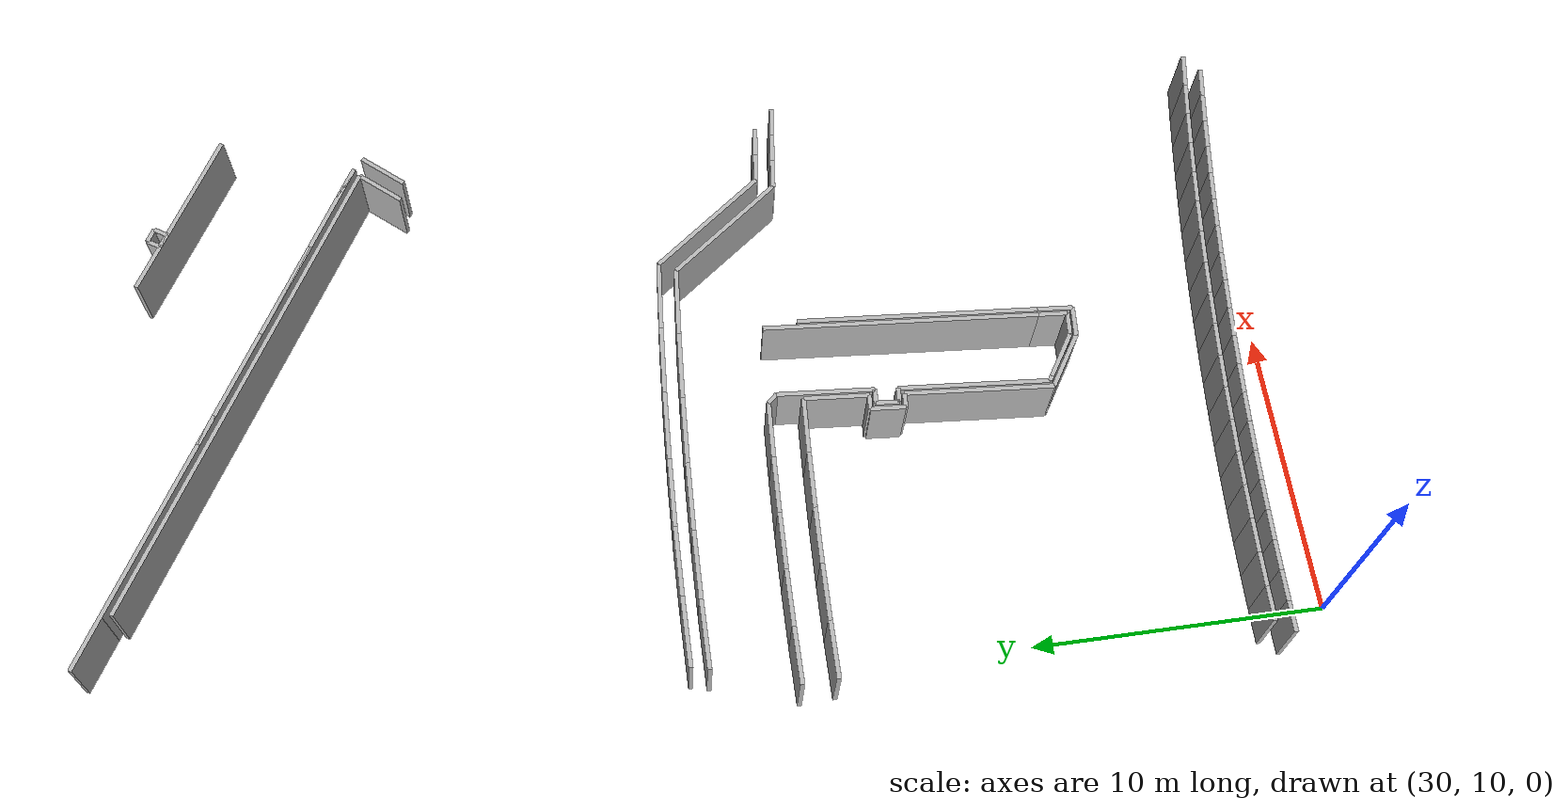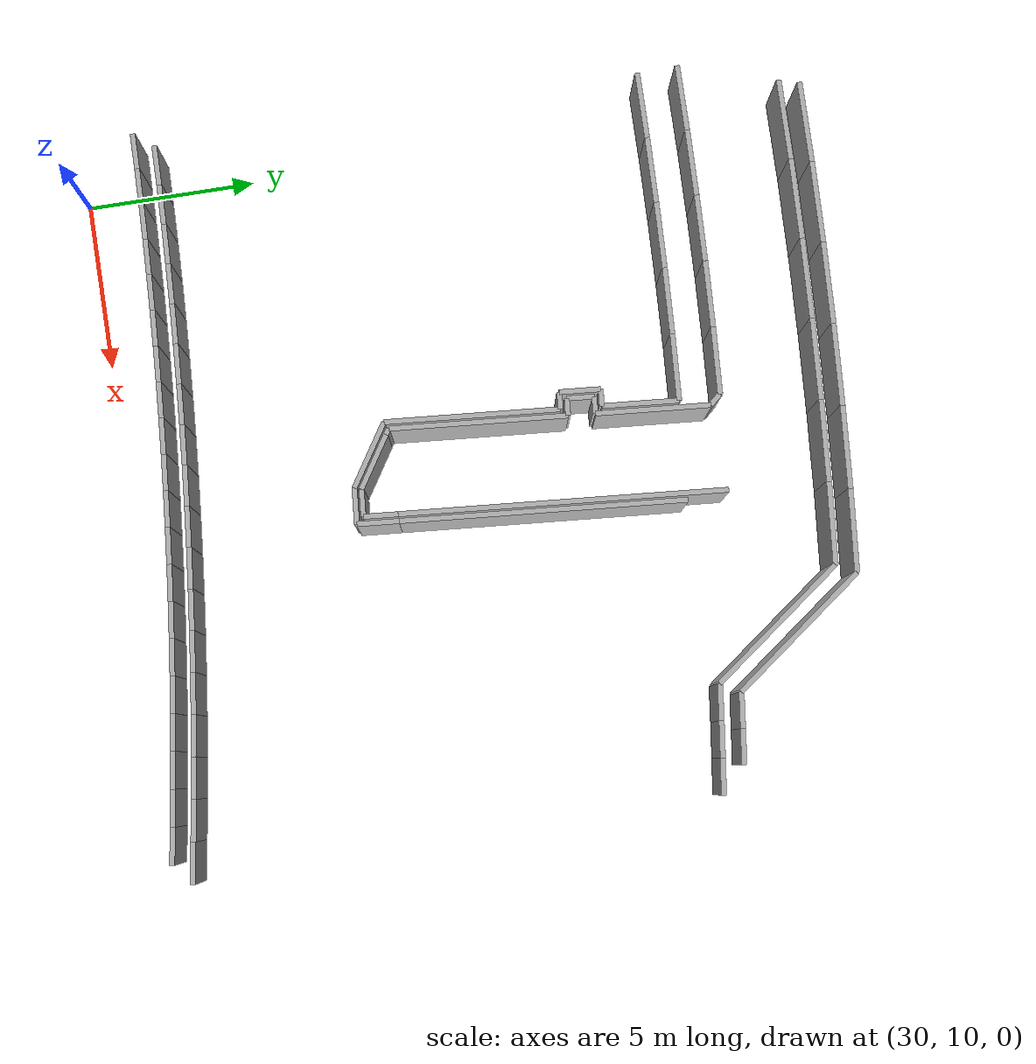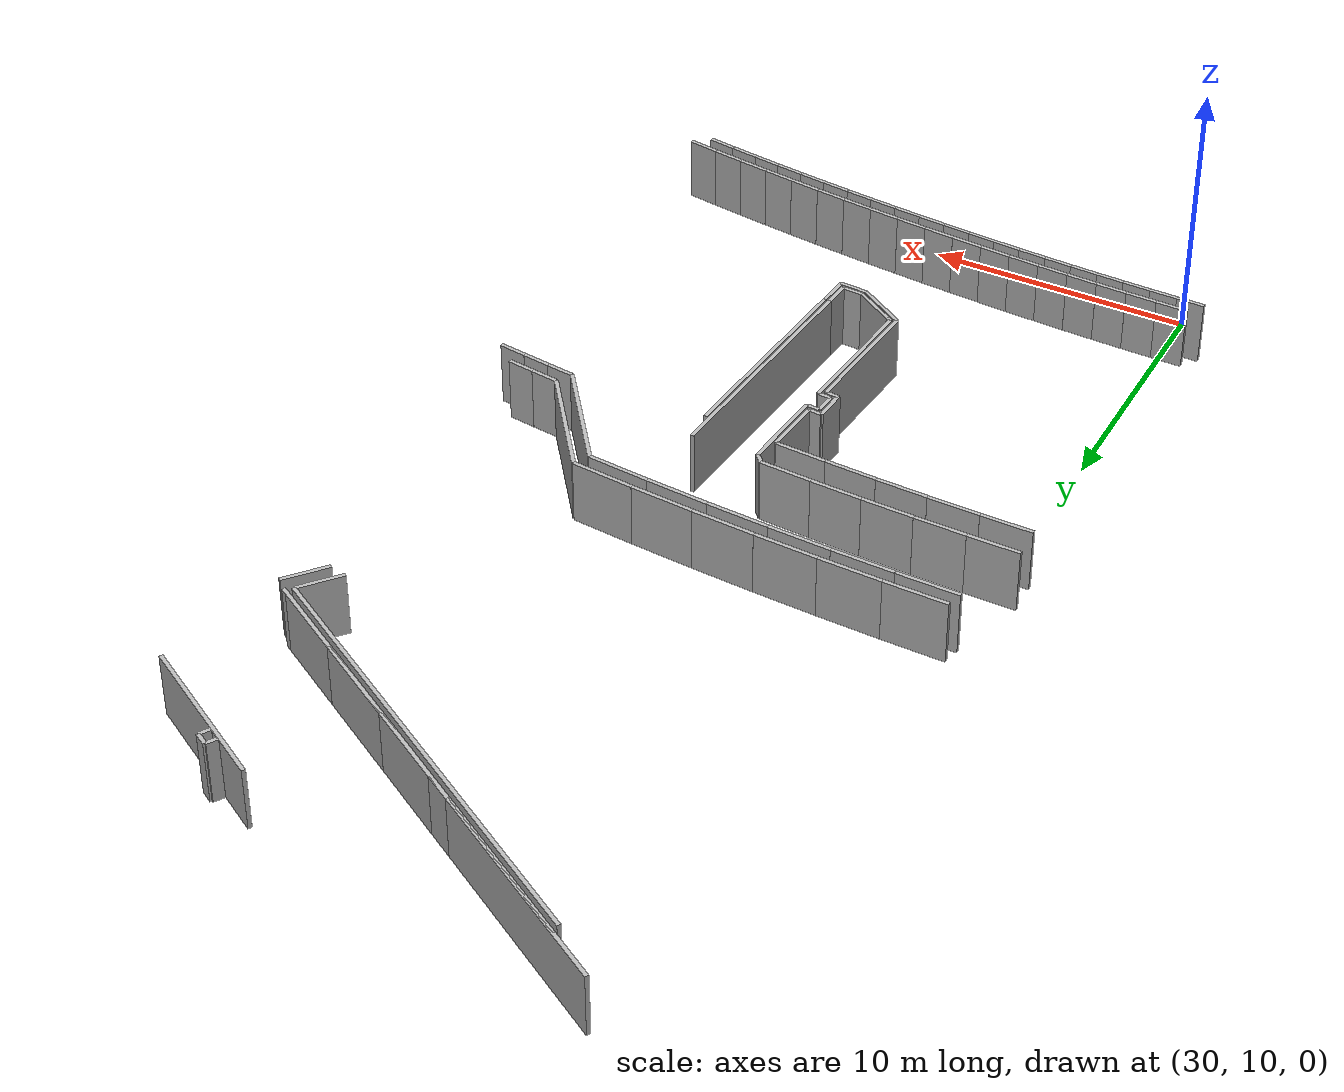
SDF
<sdf version="1.6">
 <model name="sps_0406">
  <static>1</static>
  <allow_auto_disable>0</allow_auto_disable>
  <link name="Wall71">
   <collision name="collision"><geometry><box><size>0.421971 0.15 2.5</size></box></geometry></collision>
   <visual name="visual">
    <geometry><box><size>0.421971 0.15 2.5</size></box></geometry>
    <transparency>0.0</transparency>
   </visual>
   <pose>39.1257 27.4712 1.25 0 0 -0.861464</pose>
  </link>
  <link name="Wall462">
   <collision name="collision"><geometry><box><size>2.24269 0.15 2.5</size></box></geometry></collision>
   <visual name="visual">
    <geometry><box><size>2.24269 0.15 2.5</size></box></geometry>
    <transparency>0.0</transparency>
   </visual>
   <pose>38.8982 25.3099 1.25 0 0 -1.6524</pose>
  </link>
  <link name="Wall463">
   <collision name="collision"><geometry><box><size>1.00034 0.15 2.5</size></box></geometry></collision>
   <visual name="visual">
    <geometry><box><size>1.00034 0.15 2.5</size></box></geometry>
    <transparency>0.0</transparency>
   </visual>
   <pose>40.9593 17.3946 1.25 0 -0 1.48912</pose>
  </link>
  <link name="Wall464">
   <collision name="collision"><geometry><box><size>9.54464 0.15 2.5</size></box></geometry></collision>
   <visual name="visual">
    <geometry><box><size>9.54464 0.15 2.5</size></box></geometry>
    <transparency>0.0</transparency>
   </visual>
   <pose>41.3895 22.6495 1.25 0 -0 1.48912</pose>
  </link>
  <link name="Wall469">
   <collision name="collision"><geometry><box><size>18.1378 0.15 2.5</size></box></geometry></collision>
   <visual name="visual">
    <geometry><box><size>18.1378 0.15 2.5</size></box></geometry>
    <transparency>0.0</transparency>
   </visual>
   <pose>42.2045 45.6037 1.25 0 0 -0.549248</pose>
  </link>
  <link name="Wall805">
   <collision name="collision"><geometry><box><size>1.20025 0.15 2.5</size></box></geometry></collision>
   <visual name="visual">
    <geometry><box><size>1.20025 0.15 2.5</size></box></geometry>
    <transparency>0.0</transparency>
   </visual>
   <pose>38.2593 23.6358 1.25 0 0 -1.65271</pose>
  </link>
  <link name="Wall806">
   <collision name="collision"><geometry><box><size>3.346 0.15 2.5</size></box></geometry></collision>
   <visual name="visual">
    <geometry><box><size>3.346 0.15 2.5</size></box></geometry>
    <transparency>0.0</transparency>
   </visual>
   <pose>39.1266 25.6437 1.25 0 0 -1.65248</pose>
  </link>
  <link name="Wall808">
   <collision name="collision"><geometry><box><size>17.8051 0.15 2.5</size></box></geometry></collision>
   <visual name="visual">
    <geometry><box><size>17.8051 0.15 2.5</size></box></geometry>
    <transparency>0.0</transparency>
   </visual>
   <pose>42.0626 45.3383 1.25 0 0 -0.549258</pose>
  </link>
  <link name="Wall1203">
   <collision name="collision"><geometry><box><size>2.09398 0.15 2.5</size></box></geometry></collision>
   <visual name="visual">
    <geometry><box><size>2.09398 0.15 2.5</size></box></geometry>
    <transparency>0.0</transparency>
   </visual>
   <pose>39.1731 17.3294 1.25 0 -0 2.57307</pose>
  </link>
  <link name="Wall1205">
   <collision name="collision"><geometry><box><size>1.04953 0.15 2.5</size></box></geometry></collision>
   <visual name="visual">
    <geometry><box><size>1.04953 0.15 2.5</size></box></geometry>
    <transparency>0.0</transparency>
   </visual>
   <pose>40.5785 16.7228 1.25 0 -0 3.05974</pose>
  </link>
  <link name="Wall1518">
   <collision name="collision"><geometry><box><size>1.80056 0.15 2.5</size></box></geometry></collision>
   <visual name="visual">
    <geometry><box><size>1.80056 0.15 2.5</size></box></geometry>
    <transparency>0.0</transparency>
   </visual>
   <pose>49.7382 39.8607 1.25 0 0 -2.27316</pose>
  </link>
  <link name="Wall1820">
   <collision name="collision"><geometry><box><size>5.1201 0.15 2.5</size></box></geometry></collision>
   <visual name="visual">
    <geometry><box><size>5.1201 0.15 2.5</size></box></geometry>
    <transparency>0.0</transparency>
   </visual>
   <pose>38.4997 20.4446 1.25 0 -0 1.48911</pose>
  </link>
  <link name="Wall1821">
   <collision name="collision"><geometry><box><size>0.500148 0.15 2.5</size></box></geometry></collision>
   <visual name="visual">
    <geometry><box><size>0.500148 0.15 2.5</size></box></geometry>
    <transparency>0.0</transparency>
   </visual>
   <pose>38.5576 24.2131 1.25 0 -0 3.05827</pose>
  </link>
  <link name="Wall1822">
   <collision name="collision"><geometry><box><size>0.500133 0.15 2.5</size></box></geometry></collision>
   <visual name="visual">
    <geometry><box><size>0.500133 0.15 2.5</size></box></geometry>
    <transparency>0.0</transparency>
   </visual>
   <pose>38.7409 23.997 1.25 0 -0 3.05863</pose>
  </link>
  <link name="Wall1823">
   <collision name="collision"><geometry><box><size>0.192513 0.15 2.5</size></box></geometry></collision>
   <visual name="visual">
    <geometry><box><size>0.192513 0.15 2.5</size></box></geometry>
    <transparency>0.0</transparency>
   </visual>
   <pose>38.5814 17.9449 1.25 0 0 -0.568467</pose>
  </link>
  <link name="Wall1824">
   <collision name="collision"><geometry><box><size>1.73126 0.15 2.5</size></box></geometry></collision>
   <visual name="visual">
    <geometry><box><size>1.73126 0.15 2.5</size></box></geometry>
    <transparency>0.0</transparency>
   </visual>
   <pose>39.392 17.4271 1.25 0 0 -0.568467</pose>
  </link>
  <link name="Wall1827">
   <collision name="collision"><geometry><box><size>4.78669 0.15 2.5</size></box></geometry></collision>
   <visual name="visual">
    <geometry><box><size>4.78669 0.15 2.5</size></box></geometry>
    <transparency>0.0</transparency>
   </visual>
   <pose>46.1321 28.7068 1.25 0 0 -0.935844</pose>
  </link>
  <link name="Wall2160">
   <collision name="collision"><geometry><box><size>0.500143 0.15 2.5</size></box></geometry></collision>
   <visual name="visual">
    <geometry><box><size>0.500143 0.15 2.5</size></box></geometry>
    <transparency>0.0</transparency>
   </visual>
   <pose>38.4594 23.0169 1.25 0 0 -0.083202</pose>
  </link>
  <link name="Wall2161">
   <collision name="collision"><geometry><box><size>0.500072 0.15 2.5</size></box></geometry></collision>
   <visual name="visual">
    <geometry><box><size>0.500072 0.15 2.5</size></box></geometry>
    <transparency>0.0</transparency>
   </visual>
   <pose>38.6757 23.2 1.25 0 0 -0.0829689</pose>
  </link>
  <link name="Wall2162">
   <collision name="collision"><geometry><box><size>0.799643 0.15 2.5</size></box></geometry></collision>
   <visual name="visual">
    <geometry><box><size>0.799643 0.15 2.5</size></box></geometry>
    <transparency>0.0</transparency>
   </visual>
   <pose>40.52 16.9286 1.25 0 0 -0.0813791</pose>
  </link>
  <link name="Wall2163">
   <collision name="collision"><geometry><box><size>8.32637 0.15 2.5</size></box></geometry></collision>
   <visual name="visual">
    <geometry><box><size>8.32637 0.15 2.5</size></box></geometry>
    <transparency>0.0</transparency>
   </visual>
   <pose>41.5406 22.0424 1.25 0 0 -1.65251</pose>
  </link>
  <link name="Wall2164">
   <collision name="collision"><geometry><box><size>1.21726 0.15 2.5</size></box></geometry></collision>
   <visual name="visual">
    <geometry><box><size>1.21726 0.15 2.5</size></box></geometry>
    <transparency>0.0</transparency>
   </visual>
   <pose>41.1511 17.2865 1.25 0 0 -1.65251</pose>
  </link>
  <link name="Wall2546">
   <collision name="collision"><geometry><box><size>0.799658 0.15 2.5</size></box></geometry></collision>
   <visual name="visual">
    <geometry><box><size>0.799658 0.15 2.5</size></box></geometry>
    <transparency>0.0</transparency>
   </visual>
   <pose>38.4591 23.6192 1.25 0 0 -1.6524</pose>
  </link>
  <link name="Wall2547">
   <collision name="collision"><geometry><box><size>5.19992 0.15 2.5</size></box></geometry></collision>
   <visual name="visual">
    <geometry><box><size>5.19992 0.15 2.5</size></box></geometry>
    <transparency>0.0</transparency>
   </visual>
   <pose>38.7125 20.588 1.25 0 0 -1.65253</pose>
  </link>
  <link name="Wall2550">
   <collision name="collision"><geometry><box><size>4.7795 0.15 2.5</size></box></geometry></collision>
   <visual name="visual">
    <geometry><box><size>4.7795 0.15 2.5</size></box></geometry>
    <transparency>0.0</transparency>
   </visual>
   <pose>45.8034 28.141 1.25 0 0 -0.935925</pose>
  </link>
  <link name="Wall2551">
   <collision name="collision"><geometry><box><size>1.78048 0.15 2.5</size></box></geometry></collision>
   <visual name="visual">
    <geometry><box><size>1.78048 0.15 2.5</size></box></geometry>
    <transparency>0.0</transparency>
   </visual>
   <pose>49.0803 40.0114 1.25 0 0 -2.27359</pose>
  </link>
  <link name="Wall3039">
   <collision name="collision"><geometry><box><size>3.09752 0.15 2.5</size></box></geometry></collision>
   <visual name="visual">
    <geometry><box><size>3.09752 0.15 2.5</size></box></geometry>
    <transparency>0.0</transparency>
   </visual>
   <pose>48.3874 41.8201 1.25 0 -0 2.59229</pose>
  </link>
  <link name="Wall3040">
   <collision name="collision"><geometry><box><size>3.67119 0.15 2.5</size></box></geometry></collision>
   <visual name="visual">
    <geometry><box><size>3.67119 0.15 2.5</size></box></geometry>
    <transparency>0.0</transparency>
   </visual>
   <pose>45.5008 43.587 1.25 0 -0 2.59231</pose>
  </link>
  <link name="Wall3041">
   <collision name="collision"><geometry><box><size>3.34159 0.15 2.5</size></box></geometry></collision>
   <visual name="visual">
    <geometry><box><size>3.34159 0.15 2.5</size></box></geometry>
    <transparency>0.0</transparency>
   </visual>
   <pose>42.5102 45.4176 1.25 0 -0 2.59231</pose>
  </link>
  <link name="Wall3042">
   <collision name="collision"><geometry><box><size>1.14589 0.15 2.5</size></box></geometry></collision>
   <visual name="visual">
    <geometry><box><size>1.14589 0.15 2.5</size></box></geometry>
    <transparency>0.0</transparency>
   </visual>
   <pose>40.5965 46.589 1.25 0 -0 2.59235</pose>
  </link>
  <link name="Wall3043">
   <collision name="collision"><geometry><box><size>8.5971 0.15 2.5</size></box></geometry></collision>
   <visual name="visual">
    <geometry><box><size>8.5971 0.15 2.5</size></box></geometry>
    <transparency>0.0</transparency>
   </visual>
   <pose>36.4416 49.1321 1.25 0 -0 2.59235</pose>
  </link>
  <link name="Wall6675">
   <collision name="collision"><geometry><box><size>1.98001 0.15 2.5</size></box></geometry></collision>
   <visual name="visual">
    <geometry><box><size>1.98001 0.15 2.5</size></box></geometry>
    <transparency>0.0</transparency>
   </visual>
   <pose>38.0004 27.6961 1.25 0 -0 3.0761</pose>
  </link>
  <link name="Wall6676">
   <collision name="collision"><geometry><box><size>1.98001 0.15 2.5</size></box></geometry></collision>
   <visual name="visual">
    <geometry><box><size>1.98001 0.15 2.5</size></box></geometry>
    <transparency>0.0</transparency>
   </visual>
   <pose>36.0239 27.8133 1.25 0 -0 3.08864</pose>
  </link>
  <link name="Wall6677">
   <collision name="collision"><geometry><box><size>1.97983 0.15 2.5</size></box></geometry></collision>
   <visual name="visual">
    <geometry><box><size>1.97983 0.15 2.5</size></box></geometry>
    <transparency>0.0</transparency>
   </visual>
   <pose>34.0461 27.9057 1.25 0 -0 3.10117</pose>
  </link>
  <link name="Wall6678">
   <collision name="collision"><geometry><box><size>1.97997 0.15 2.5</size></box></geometry></collision>
   <visual name="visual">
    <geometry><box><size>1.97997 0.15 2.5</size></box></geometry>
    <transparency>0.0</transparency>
   </visual>
   <pose>32.0674 27.9735 1.25 0 -0 3.11351</pose>
  </link>
  <link name="Wall6679">
   <collision name="collision"><geometry><box><size>1.98004 0.15 2.5</size></box></geometry></collision>
   <visual name="visual">
    <geometry><box><size>1.98004 0.15 2.5</size></box></geometry>
    <transparency>0.0</transparency>
   </visual>
   <pose>30.0879 28.0167 1.25 0 -0 3.12603</pose>
  </link>
  <link name="Wall6795">
   <collision name="collision"><geometry><box><size>6.22606 0.15 2.5</size></box></geometry></collision>
   <visual name="visual">
    <geometry><box><size>6.22606 0.15 2.5</size></box></geometry>
    <transparency>0.0</transparency>
   </visual>
   <pose>48.9723 47.1047 1.25 0 -0 2.59157</pose>
  </link>
  <link name="Wall6811">
   <collision name="collision"><geometry><box><size>1.19264 0.15 2.5</size></box></geometry></collision>
   <visual name="visual">
    <geometry><box><size>1.19264 0.15 2.5</size></box></geometry>
    <transparency>0.0</transparency>
   </visual>
   <pose>49.8899 10.7001 1.25 0 -0 2.98466</pose>
  </link>
  <link name="Wall6812">
   <collision name="collision"><geometry><box><size>1.1925 0.15 2.5</size></box></geometry></collision>
   <visual name="visual">
    <geometry><box><size>1.1925 0.15 2.5</size></box></geometry>
    <transparency>0.0</transparency>
   </visual>
   <pose>48.7112 10.8815 1.25 0 -0 2.99313</pose>
  </link>
  <link name="Wall6813">
   <collision name="collision"><geometry><box><size>1.19252 0.15 2.5</size></box></geometry></collision>
   <visual name="visual">
    <geometry><box><size>1.19252 0.15 2.5</size></box></geometry>
    <transparency>0.0</transparency>
   </visual>
   <pose>47.5311 11.0529 1.25 0 -0 3.00156</pose>
  </link>
  <link name="Wall6814">
   <collision name="collision"><geometry><box><size>1.19254 0.15 2.5</size></box></geometry></collision>
   <visual name="visual">
    <geometry><box><size>1.19254 0.15 2.5</size></box></geometry>
    <transparency>0.0</transparency>
   </visual>
   <pose>46.3495 11.2145 1.25 0 -0 3.00973</pose>
  </link>
  <link name="Wall6815">
   <collision name="collision"><geometry><box><size>1.19248 0.15 2.5</size></box></geometry></collision>
   <visual name="visual">
    <geometry><box><size>1.19248 0.15 2.5</size></box></geometry>
    <transparency>0.0</transparency>
   </visual>
   <pose>45.1667 11.3663 1.25 0 -0 3.01818</pose>
  </link>
  <link name="Wall6816">
   <collision name="collision"><geometry><box><size>1.19262 0.15 2.5</size></box></geometry></collision>
   <visual name="visual">
    <geometry><box><size>1.19262 0.15 2.5</size></box></geometry>
    <transparency>0.0</transparency>
   </visual>
   <pose>43.9827 11.5081 1.25 0 -0 3.02665</pose>
  </link>
  <link name="Wall6817">
   <collision name="collision"><geometry><box><size>1.19263 0.15 2.5</size></box></geometry></collision>
   <visual name="visual">
    <geometry><box><size>1.19263 0.15 2.5</size></box></geometry>
    <transparency>0.0</transparency>
   </visual>
   <pose>42.7974 11.64 1.25 0 -0 3.03489</pose>
  </link>
  <link name="Wall6818">
   <collision name="collision"><geometry><box><size>1.1927 0.15 2.5</size></box></geometry></collision>
   <visual name="visual">
    <geometry><box><size>1.1927 0.15 2.5</size></box></geometry>
    <transparency>0.0</transparency>
   </visual>
   <pose>41.611 11.762 1.25 0 -0 3.04333</pose>
  </link>
  <link name="Wall6819">
   <collision name="collision"><geometry><box><size>1.19261 0.15 2.5</size></box></geometry></collision>
   <visual name="visual">
    <geometry><box><size>1.19261 0.15 2.5</size></box></geometry>
    <transparency>0.0</transparency>
   </visual>
   <pose>40.4236 11.874 1.25 0 -0 3.05176</pose>
  </link>
  <link name="Wall6820">
   <collision name="collision"><geometry><box><size>1.19256 0.15 2.5</size></box></geometry></collision>
   <visual name="visual">
    <geometry><box><size>1.19256 0.15 2.5</size></box></geometry>
    <transparency>0.0</transparency>
   </visual>
   <pose>39.2354 11.9761 1.25 0 -0 3.06002</pose>
  </link>
  <link name="Wall6821">
   <collision name="collision"><geometry><box><size>1.1924 0.15 2.5</size></box></geometry></collision>
   <visual name="visual">
    <geometry><box><size>1.1924 0.15 2.5</size></box></geometry>
    <transparency>0.0</transparency>
   </visual>
   <pose>38.0465 12.0683 1.25 0 -0 3.06838</pose>
  </link>
  <link name="Wall6822">
   <collision name="collision"><geometry><box><size>1.19268 0.15 2.5</size></box></geometry></collision>
   <visual name="visual">
    <geometry><box><size>1.19268 0.15 2.5</size></box></geometry>
    <transparency>0.0</transparency>
   </visual>
   <pose>36.8568 12.1504 1.25 0 -0 3.07696</pose>
  </link>
  <link name="Wall6823">
   <collision name="collision"><geometry><box><size>1.19252 0.15 2.5</size></box></geometry></collision>
   <visual name="visual">
    <geometry><box><size>1.19252 0.15 2.5</size></box></geometry>
    <transparency>0.0</transparency>
   </visual>
   <pose>35.6664 12.2226 1.25 0 -0 3.08506</pose>
  </link>
  <link name="Wall6824">
   <collision name="collision"><geometry><box><size>1.1926 0.15 2.5</size></box></geometry></collision>
   <visual name="visual">
    <geometry><box><size>1.1926 0.15 2.5</size></box></geometry>
    <transparency>0.0</transparency>
   </visual>
   <pose>34.4755 12.2849 1.25 0 -0 3.09362</pose>
  </link>
  <link name="Wall6825">
   <collision name="collision"><geometry><box><size>1.19252 0.15 2.5</size></box></geometry></collision>
   <visual name="visual">
    <geometry><box><size>1.19252 0.15 2.5</size></box></geometry>
    <transparency>0.0</transparency>
   </visual>
   <pose>33.284 12.3371 1.25 0 -0 3.10202</pose>
  </link>
  <link name="Wall6826">
   <collision name="collision"><geometry><box><size>1.1926 0.15 2.5</size></box></geometry></collision>
   <visual name="visual">
    <geometry><box><size>1.1926 0.15 2.5</size></box></geometry>
    <transparency>0.0</transparency>
   </visual>
   <pose>32.0922 12.3794 1.25 0 -0 3.11022</pose>
  </link>
  <link name="Wall6827">
   <collision name="collision"><geometry><box><size>1.19269 0.15 2.5</size></box></geometry></collision>
   <visual name="visual">
    <geometry><box><size>1.19269 0.15 2.5</size></box></geometry>
    <transparency>0.0</transparency>
   </visual>
   <pose>30.9 12.4117 1.25 0 -0 3.11877</pose>
  </link>
  <link name="Wall6828">
   <collision name="collision"><geometry><box><size>1.19275 0.15 2.5</size></box></geometry></collision>
   <visual name="visual">
    <geometry><box><size>1.19275 0.15 2.5</size></box></geometry>
    <transparency>0.0</transparency>
   </visual>
   <pose>29.7075 12.434 1.25 0 -0 3.12701</pose>
  </link>
  <link name="Wall9344">
   <collision name="collision"><geometry><box><size>1.97128 0.15 2.5</size></box></geometry></collision>
   <visual name="visual">
    <geometry><box><size>1.97128 0.15 2.5</size></box></geometry>
    <transparency>0.0</transparency>
   </visual>
   <pose>38.0062 26.4926 1.25 0 -0 3.0755</pose>
  </link>
  <link name="Wall9345">
   <collision name="collision"><geometry><box><size>1.97145 0.15 2.5</size></box></geometry></collision>
   <visual name="visual">
    <geometry><box><size>1.97145 0.15 2.5</size></box></geometry>
    <transparency>0.0</transparency>
   </visual>
   <pose>36.0384 26.6104 1.25 0 -0 3.0881</pose>
  </link>
  <link name="Wall9346">
   <collision name="collision"><geometry><box><size>1.97143 0.15 2.5</size></box></geometry></collision>
   <visual name="visual">
    <geometry><box><size>1.97143 0.15 2.5</size></box></geometry>
    <transparency>0.0</transparency>
   </visual>
   <pose>34.0691 26.7034 1.25 0 -0 3.10071</pose>
  </link>
  <link name="Wall9347">
   <collision name="collision"><geometry><box><size>1.97163 0.15 2.5</size></box></geometry></collision>
   <visual name="visual">
    <geometry><box><size>1.97163 0.15 2.5</size></box></geometry>
    <transparency>0.0</transparency>
   </visual>
   <pose>32.0988 26.7718 1.25 0 -0 3.11308</pose>
  </link>
  <link name="Wall9348">
   <collision name="collision"><geometry><box><size>1.97144 0.15 2.5</size></box></geometry></collision>
   <visual name="visual">
    <geometry><box><size>1.97144 0.15 2.5</size></box></geometry>
    <transparency>0.0</transparency>
   </visual>
   <pose>30.1278 26.8155 1.25 0 -0 3.12577</pose>
  </link>
  <link name="Wall9371">
   <collision name="collision"><geometry><box><size>2.4022 0.15 2.5</size></box></geometry></collision>
   <visual name="visual">
    <geometry><box><size>2.4022 0.15 2.5</size></box></geometry>
    <transparency>0.0</transparency>
   </visual>
   <pose>43.1906 30.181 1.25 0 -0 3.04494</pose>
  </link>
  <link name="Wall9372">
   <collision name="collision"><geometry><box><size>2.40205 0.15 2.5</size></box></geometry></collision>
   <visual name="visual">
    <geometry><box><size>2.40205 0.15 2.5</size></box></geometry>
    <transparency>0.0</transparency>
   </visual>
   <pose>40.7981 30.3949 1.25 0 -0 3.05991</pose>
  </link>
  <link name="Wall9373">
   <collision name="collision"><geometry><box><size>2.40215 0.15 2.5</size></box></geometry></collision>
   <visual name="visual">
    <geometry><box><size>2.40215 0.15 2.5</size></box></geometry>
    <transparency>0.0</transparency>
   </visual>
   <pose>38.4026 30.5731 1.25 0 -0 3.07477</pose>
  </link>
  <link name="Wall9374">
   <collision name="collision"><geometry><box><size>2.40224 0.15 2.5</size></box></geometry></collision>
   <visual name="visual">
    <geometry><box><size>2.40224 0.15 2.5</size></box></geometry>
    <transparency>0.0</transparency>
   </visual>
   <pose>36.0048 30.7158 1.25 0 -0 3.08953</pose>
  </link>
  <link name="Wall9375">
   <collision name="collision"><geometry><box><size>2.40222 0.15 2.5</size></box></geometry></collision>
   <visual name="visual">
    <geometry><box><size>2.40222 0.15 2.5</size></box></geometry>
    <transparency>0.0</transparency>
   </visual>
   <pose>33.605 30.8228 1.25 0 -0 3.10454</pose>
  </link>
  <link name="Wall9376">
   <collision name="collision"><geometry><box><size>2.40221 0.15 2.5</size></box></geometry></collision>
   <visual name="visual">
    <geometry><box><size>2.40221 0.15 2.5</size></box></geometry>
    <transparency>0.0</transparency>
   </visual>
   <pose>31.2039 30.894 1.25 0 -0 3.11936</pose>
  </link>
  <link name="Wall9457">
   <collision name="collision"><geometry><box><size>1.03436 0.15 2.5</size></box></geometry></collision>
   <visual name="visual">
    <geometry><box><size>1.03436 0.15 2.5</size></box></geometry>
    <transparency>0.0</transparency>
   </visual>
   <pose>49.0899 26.5761 1.25 0 -0 3.0054</pose>
  </link>
  <link name="Wall9458">
   <collision name="collision"><geometry><box><size>1.03448 0.15 2.5</size></box></geometry></collision>
   <visual name="visual">
    <geometry><box><size>1.03448 0.15 2.5</size></box></geometry>
    <transparency>0.0</transparency>
   </visual>
   <pose>48.0646 26.7131 1.25 0 -0 3.01208</pose>
  </link>
  <link name="Wall9476">
   <collision name="collision"><geometry><box><size>1.06452 0.15 2.5</size></box></geometry></collision>
   <visual name="visual">
    <geometry><box><size>1.06452 0.15 2.5</size></box></geometry>
    <transparency>0.0</transparency>
   </visual>
   <pose>49.3294 10.1963 1.25 0 -0 2.98808</pose>
  </link>
  <link name="Wall9477">
   <collision name="collision"><geometry><box><size>1.06448 0.15 2.5</size></box></geometry></collision>
   <visual name="visual">
    <geometry><box><size>1.06448 0.15 2.5</size></box></geometry>
    <transparency>0.0</transparency>
   </visual>
   <pose>48.2768 10.3551 1.25 0 -0 2.99561</pose>
  </link>
  <link name="Wall9478">
   <collision name="collision"><geometry><box><size>1.06458 0.15 2.5</size></box></geometry></collision>
   <visual name="visual">
    <geometry><box><size>1.06458 0.15 2.5</size></box></geometry>
    <transparency>0.0</transparency>
   </visual>
   <pose>47.2231 10.506 1.25 0 -0 3.00309</pose>
  </link>
  <link name="Wall9479">
   <collision name="collision"><geometry><box><size>1.06456 0.15 2.5</size></box></geometry></collision>
   <visual name="visual">
    <geometry><box><size>1.06456 0.15 2.5</size></box></geometry>
    <transparency>0.0</transparency>
   </visual>
   <pose>46.1682 10.6491 1.25 0 -0 3.01044</pose>
  </link>
  <link name="Wall9480">
   <collision name="collision"><geometry><box><size>1.06449 0.15 2.5</size></box></geometry></collision>
   <visual name="visual">
    <geometry><box><size>1.06449 0.15 2.5</size></box></geometry>
    <transparency>0.0</transparency>
   </visual>
   <pose>45.1123 10.7842 1.25 0 -0 3.01823</pose>
  </link>
  <link name="Wall9481">
   <collision name="collision"><geometry><box><size>1.06435 0.15 2.5</size></box></geometry></collision>
   <visual name="visual">
    <geometry><box><size>1.06435 0.15 2.5</size></box></geometry>
    <transparency>0.0</transparency>
   </visual>
   <pose>44.0555 10.9113 1.25 0 -0 3.02555</pose>
  </link>
  <link name="Wall9482">
   <collision name="collision"><geometry><box><size>1.06448 0.15 2.5</size></box></geometry></collision>
   <visual name="visual">
    <geometry><box><size>1.06448 0.15 2.5</size></box></geometry>
    <transparency>0.0</transparency>
   </visual>
   <pose>42.9978 11.0305 1.25 0 -0 3.03318</pose>
  </link>
  <link name="Wall9483">
   <collision name="collision"><geometry><box><size>1.06446 0.15 2.5</size></box></geometry></collision>
   <visual name="visual">
    <geometry><box><size>1.06446 0.15 2.5</size></box></geometry>
    <transparency>0.0</transparency>
   </visual>
   <pose>41.9391 11.1418 1.25 0 -0 3.0405</pose>
  </link>
  <link name="Wall9484">
   <collision name="collision"><geometry><box><size>1.06464 0.15 2.5</size></box></geometry></collision>
   <visual name="visual">
    <geometry><box><size>1.06464 0.15 2.5</size></box></geometry>
    <transparency>0.0</transparency>
   </visual>
   <pose>40.8796 11.2452 1.25 0 -0 3.04812</pose>
  </link>
  <link name="Wall9485">
   <collision name="collision"><geometry><box><size>1.06448 0.15 2.5</size></box></geometry></collision>
   <visual name="visual">
    <geometry><box><size>1.06448 0.15 2.5</size></box></geometry>
    <transparency>0.0</transparency>
   </visual>
   <pose>39.8194 11.3406 1.25 0 -0 3.05559</pose>
  </link>
  <link name="Wall9486">
   <collision name="collision"><geometry><box><size>1.06449 0.15 2.5</size></box></geometry></collision>
   <visual name="visual">
    <geometry><box><size>1.06449 0.15 2.5</size></box></geometry>
    <transparency>0.0</transparency>
   </visual>
   <pose>38.7585 11.428 1.25 0 -0 3.06319</pose>
  </link>
  <link name="Wall9487">
   <collision name="collision"><geometry><box><size>1.06452 0.15 2.5</size></box></geometry></collision>
   <visual name="visual">
    <geometry><box><size>1.06452 0.15 2.5</size></box></geometry>
    <transparency>0.0</transparency>
   </visual>
   <pose>37.697 11.5075 1.25 0 -0 3.07049</pose>
  </link>
  <link name="Wall9488">
   <collision name="collision"><geometry><box><size>1.06452 0.15 2.5</size></box></geometry></collision>
   <visual name="visual">
    <geometry><box><size>1.06452 0.15 2.5</size></box></geometry>
    <transparency>0.0</transparency>
   </visual>
   <pose>36.6348 11.5791 1.25 0 -0 3.07808</pose>
  </link>
  <link name="Wall9489">
   <collision name="collision"><geometry><box><size>1.06447 0.15 2.5</size></box></geometry></collision>
   <visual name="visual">
    <geometry><box><size>1.06447 0.15 2.5</size></box></geometry>
    <transparency>0.0</transparency>
   </visual>
   <pose>35.5723 11.6426 1.25 0 -0 3.08572</pose>
  </link>
  <link name="Wall9490">
   <collision name="collision"><geometry><box><size>1.06442 0.15 2.5</size></box></geometry></collision>
   <visual name="visual">
    <geometry><box><size>1.06442 0.15 2.5</size></box></geometry>
    <transparency>0.0</transparency>
   </visual>
   <pose>34.5093 11.6981 1.25 0 -0 3.09312</pose>
  </link>
  <link name="Wall9491">
   <collision name="collision"><geometry><box><size>1.06449 0.15 2.5</size></box></geometry></collision>
   <visual name="visual">
    <geometry><box><size>1.06449 0.15 2.5</size></box></geometry>
    <transparency>0.0</transparency>
   </visual>
   <pose>33.4459 11.7457 1.25 0 -0 3.10064</pose>
  </link>
  <link name="Wall9492">
   <collision name="collision"><geometry><box><size>1.06462 0.15 2.5</size></box></geometry></collision>
   <visual name="visual">
    <geometry><box><size>1.06462 0.15 2.5</size></box></geometry>
    <transparency>0.0</transparency>
   </visual>
   <pose>32.3821 11.7853 1.25 0 -0 3.10811</pose>
  </link>
  <link name="Wall9493">
   <collision name="collision"><geometry><box><size>1.06439 0.15 2.5</size></box></geometry></collision>
   <visual name="visual">
    <geometry><box><size>1.06439 0.15 2.5</size></box></geometry>
    <transparency>0.0</transparency>
   </visual>
   <pose>31.318 11.817 1.25 0 -0 3.1155</pose>
  </link>
  <link name="Wall9494">
   <collision name="collision"><geometry><box><size>1.06457 0.15 2.5</size></box></geometry></collision>
   <visual name="visual">
    <geometry><box><size>1.06457 0.15 2.5</size></box></geometry>
    <transparency>0.0</transparency>
   </visual>
   <pose>30.2538 11.8407 1.25 0 -0 3.12319</pose>
  </link>
  <link name="Wall9495">
   <collision name="collision"><geometry><box><size>1.06446 0.15 2.5</size></box></geometry></collision>
   <visual name="visual">
    <geometry><box><size>1.06446 0.15 2.5</size></box></geometry>
    <transparency>0.0</transparency>
   </visual>
   <pose>29.1894 11.8563 1.25 0 -0 3.1307</pose>
  </link>
  <link name="Wall12825">
   <collision name="collision"><geometry><box><size>0.499982 0.15 2.5</size></box></geometry></collision>
   <visual name="visual">
    <geometry><box><size>0.499982 0.15 2.5</size></box></geometry>
    <transparency>0.0</transparency>
   </visual>
   <pose>48.0087 47.7083 1.25 0 -0 2.58911</pose>
  </link>
  <link name="Wall12826">
   <collision name="collision"><geometry><box><size>0.500078 0.15 2.5</size></box></geometry></collision>
   <visual name="visual">
    <geometry><box><size>0.500078 0.15 2.5</size></box></geometry>
    <transparency>0.0</transparency>
   </visual>
   <pose>47.9271 48.0523 1.25 0 -0 1.01801</pose>
  </link>
  <link name="Wall12827">
   <collision name="collision"><geometry><box><size>0.499982 0.15 2.5</size></box></geometry></collision>
   <visual name="visual">
    <geometry><box><size>0.499982 0.15 2.5</size></box></geometry>
    <transparency>0.0</transparency>
   </visual>
   <pose>48.2712 48.1339 1.25 0 0 -0.552479</pose>
  </link>
  <link name="Wall12828">
   <collision name="collision"><geometry><box><size>0.500078 0.15 2.5</size></box></geometry></collision>
   <visual name="visual">
    <geometry><box><size>0.500078 0.15 2.5</size></box></geometry>
    <transparency>0.0</transparency>
   </visual>
   <pose>48.3527 47.7899 1.25 0 0 -2.12359</pose>
  </link>
  <link name="Wall27688">
   <collision name="collision"><geometry><box><size>2.43099 0.15 2.5</size></box></geometry></collision>
   <visual name="visual">
    <geometry><box><size>2.43099 0.15 2.5</size></box></geometry>
    <transparency>0.0</transparency>
   </visual>
   <pose>43.5029 30.753 1.25 0 -0 3.04329</pose>
  </link>
  <link name="Wall27689">
   <collision name="collision"><geometry><box><size>2.43059 0.15 2.5</size></box></geometry></collision>
   <visual name="visual">
    <geometry><box><size>2.43059 0.15 2.5</size></box></geometry>
    <transparency>0.0</transparency>
   </visual>
   <pose>41.0821 30.9733 1.25 0 -0 3.05838</pose>
  </link>
  <link name="Wall27690">
   <collision name="collision"><geometry><box><size>2.43082 0.15 2.5</size></box></geometry></collision>
   <visual name="visual">
    <geometry><box><size>2.43082 0.15 2.5</size></box></geometry>
    <transparency>0.0</transparency>
   </visual>
   <pose>38.6585 31.1571 1.25 0 -0 3.07342</pose>
  </link>
  <link name="Wall27691">
   <collision name="collision"><geometry><box><size>2.43087 0.15 2.5</size></box></geometry></collision>
   <visual name="visual">
    <geometry><box><size>2.43087 0.15 2.5</size></box></geometry>
    <transparency>0.0</transparency>
   </visual>
   <pose>36.2322 31.3045 1.25 0 -0 3.08841</pose>
  </link>
  <link name="Wall27692">
   <collision name="collision"><geometry><box><size>2.43079 0.15 2.5</size></box></geometry></collision>
   <visual name="visual">
    <geometry><box><size>2.43079 0.15 2.5</size></box></geometry>
    <transparency>0.0</transparency>
   </visual>
   <pose>33.8039 31.4155 1.25 0 -0 3.10342</pose>
  </link>
  <link name="Wall27693">
   <collision name="collision"><geometry><box><size>2.43083 0.15 2.5</size></box></geometry></collision>
   <visual name="visual">
    <geometry><box><size>2.43083 0.15 2.5</size></box></geometry>
    <transparency>0.0</transparency>
   </visual>
   <pose>31.3744 31.49 1.25 0 -0 3.11847</pose>
  </link>
  <link name="Wall27771">
   <collision name="collision"><geometry><box><size>1.05169 0.15 2.5</size></box></geometry></collision>
   <visual name="visual">
    <geometry><box><size>1.05169 0.15 2.5</size></box></geometry>
    <transparency>0.0</transparency>
   </visual>
   <pose>49.8265 25.8672 1.25 0 -0 3.00021</pose>
  </link>
  <link name="Wall27772">
   <collision name="collision"><geometry><box><size>1.05179 0.15 2.5</size></box></geometry></collision>
   <visual name="visual">
    <geometry><box><size>1.05179 0.15 2.5</size></box></geometry>
    <transparency>0.0</transparency>
   </visual>
   <pose>48.7848 26.012 1.25 0 -0 3.00673</pose>
  </link>
  <link name="Wall27773">
   <collision name="collision"><geometry><box><size>1.05156 0.15 2.5</size></box></geometry></collision>
   <visual name="visual">
    <geometry><box><size>1.05156 0.15 2.5</size></box></geometry>
    <transparency>0.0</transparency>
   </visual>
   <pose>47.7421 26.1498 1.25 0 -0 3.01367</pose>
  </link>
 </model>
</sdf>
